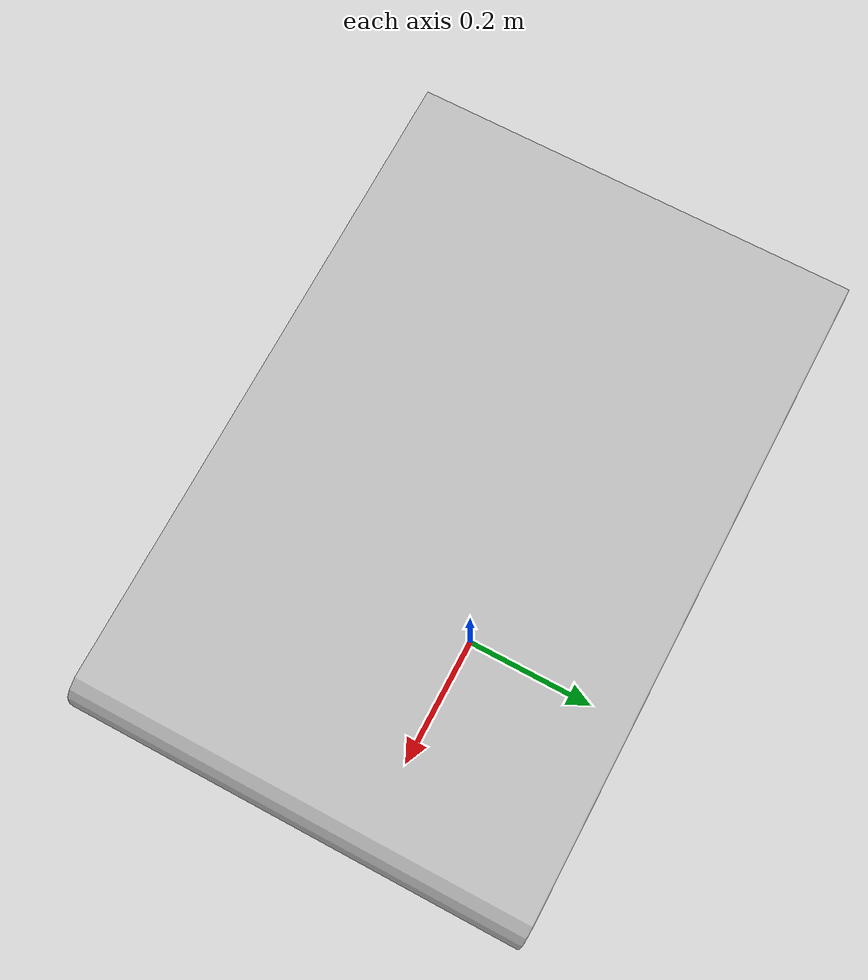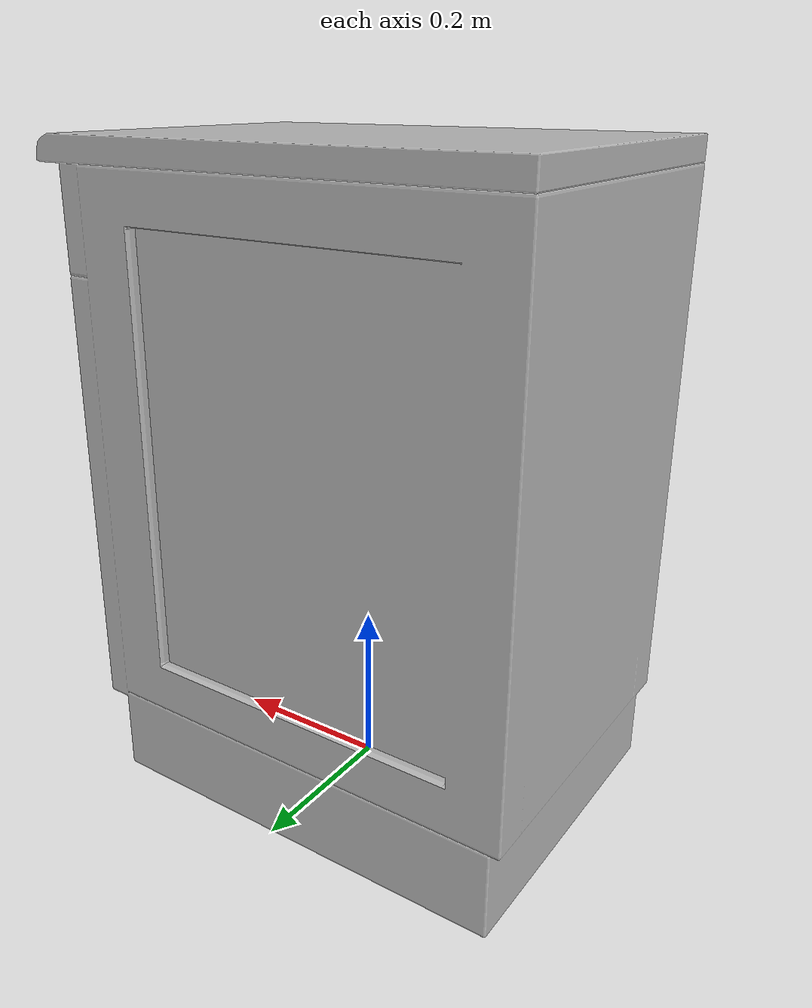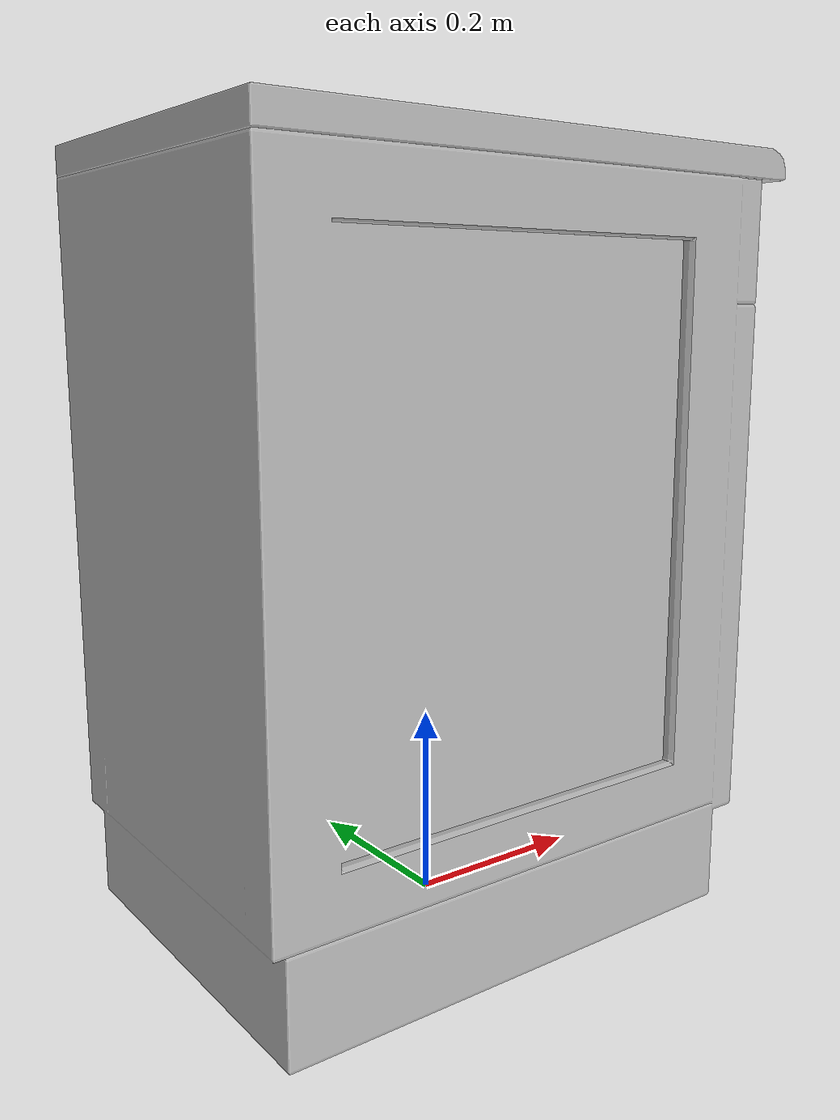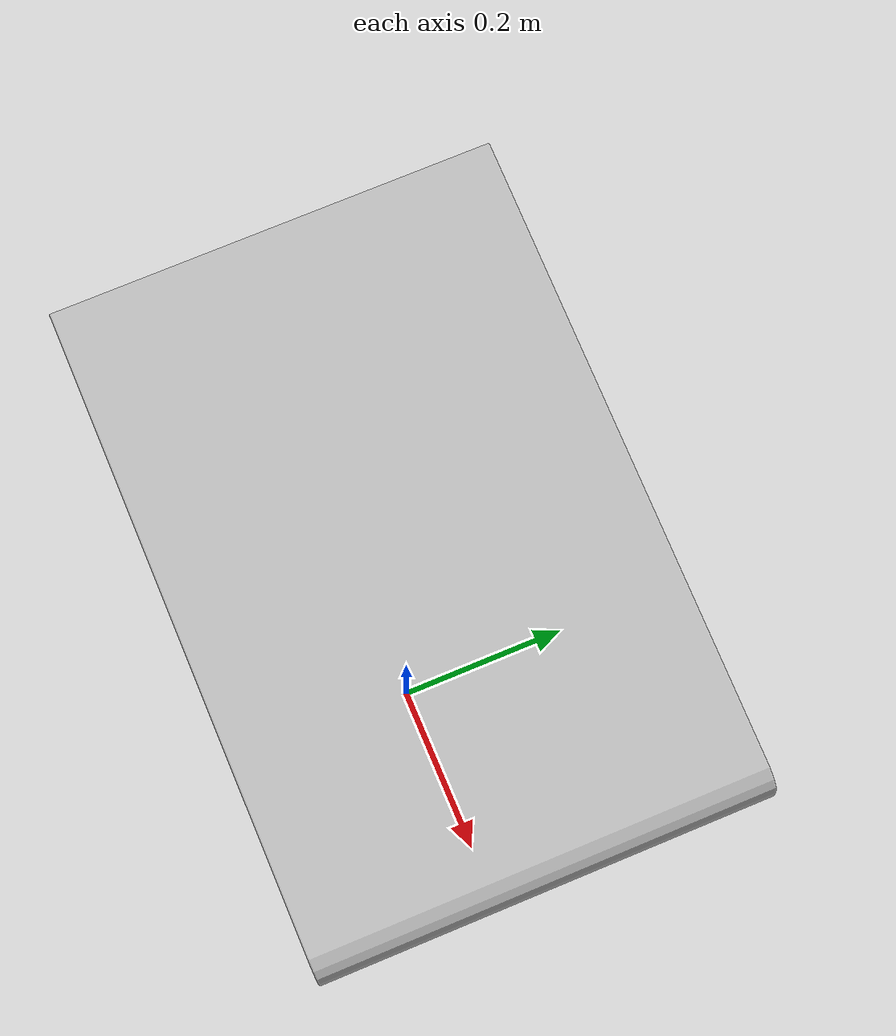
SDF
<?xml version='1.0'?>
<sdf version='1.4'>
  <model name='94'>
    <pose>0 0 0 0 0 0</pose>
    <static>true</static>
    <link name='link'>
      <collision name='collision'>
        <pose>0 0 0 0 0 0</pose>
        <geometry>
          <box>
            <size>0.600001 0.4 2</size>
          </box>
        </geometry>
      </collision>
      <visual name='visual'>
        <pose>0 0 0 0 0 0</pose>
        <geometry>
          <mesh><uri>model://94/94.dae</uri></mesh>
        </geometry>
      </visual>
    </link>
  </model>
</sdf>
